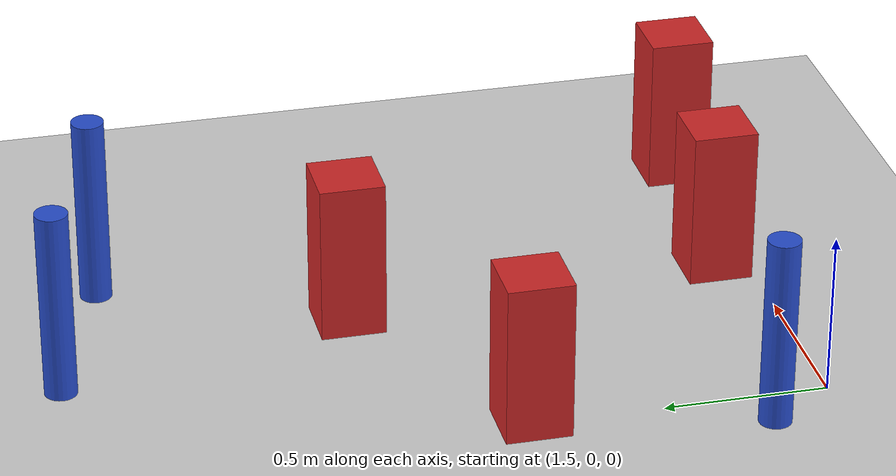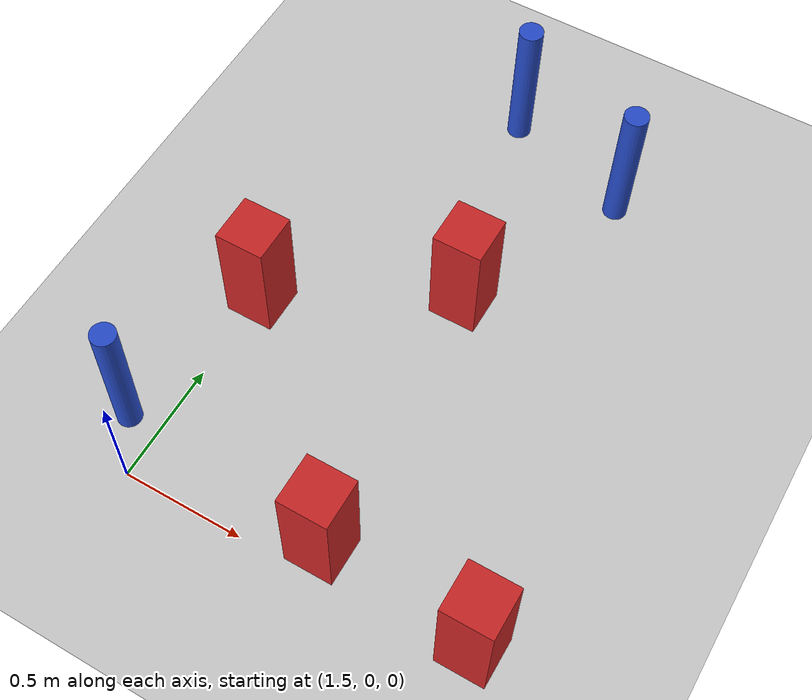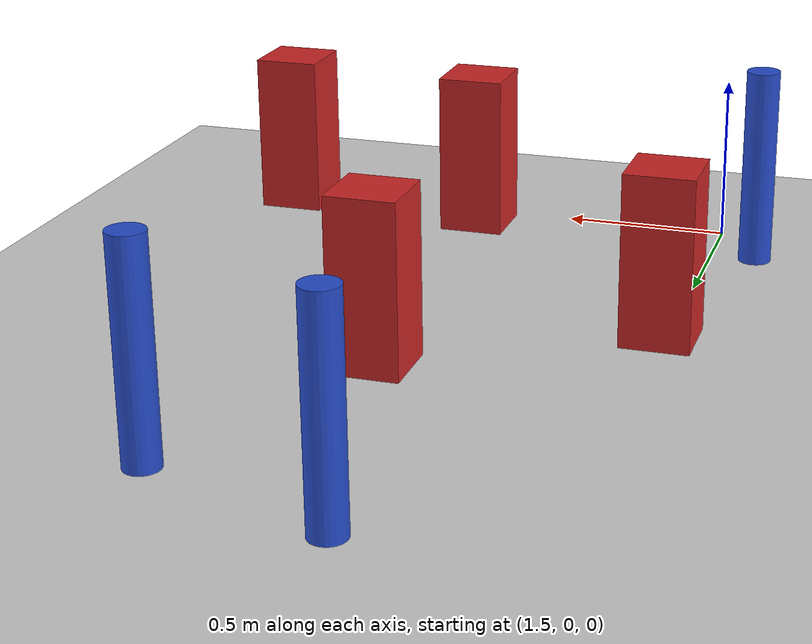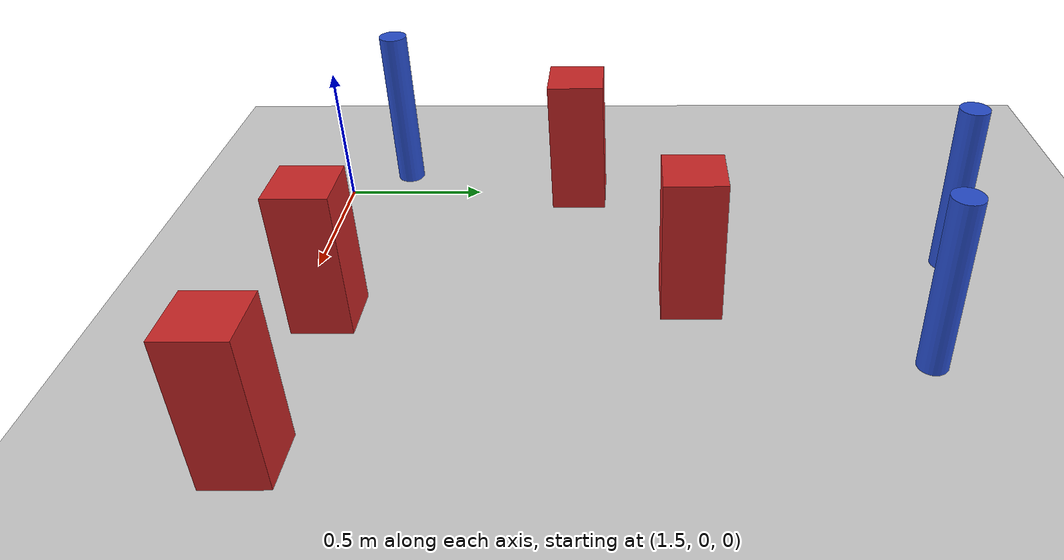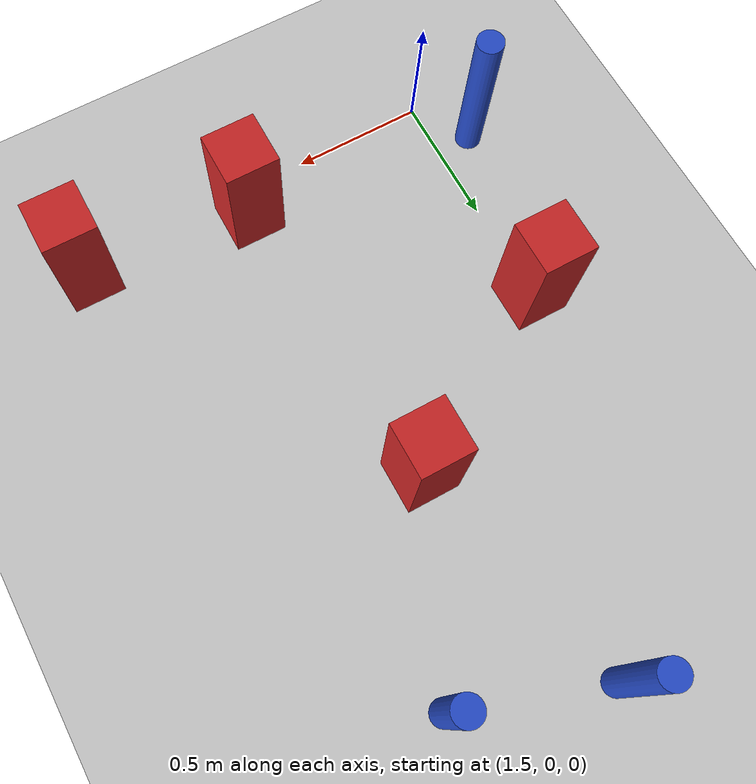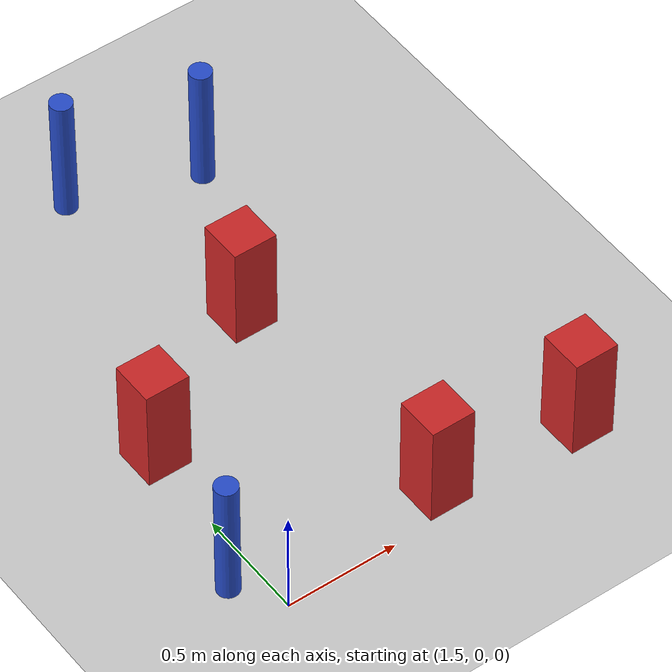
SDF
<sdf version="1.6">
 <world name="default">
  <model name="ground_plane">
   <static>1</static>
   <link name="link">
    <collision name="collision">
     <geometry><plane><normal>0 0 1</normal><size>100 100</size></plane></geometry>
     <surface><friction><ode><mu>100</mu><mu2>50</mu2></ode></friction></surface>
    </collision>
    <visual name="visual">
     <cast_shadows>0</cast_shadows>
     <geometry><plane><normal>0 0 1</normal><size>100 100</size></plane></geometry>
     <material>
      <ambient>1.0 1.0 1.0 1.0</ambient>
      <diffuse>0.8 0.8 0.8 1.0</diffuse>
      <specular>0.01 0.01 0.01 1.000000</specular>
     </material>
    </visual>
   </link>
  </model>
  <model name="pole_obstacle52">
   <static>true</static>
   <pose>2.54015641414 2.01648973834 7.38925637345e-09 -8.47170692799e-08 1.24976765087e-08 -1.74513093015e-07</pose>
   <link name="link">
    <pose>0 0 0.3 0 -0 0</pose>
    <inertial>
     <mass>1</mass>
     <inertia><ixx>0.145833</ixx><ixy>0</ixy><ixz>0</ixz><iyy>0.145833</iyy><iyz>0</iyz><izz>0.125</izz></inertia>
    </inertial>
    <collision name="collision">
     <geometry><cylinder><radius>0.05</radius><length>.6</length></cylinder></geometry>
    </collision>
    <visual name="visual">
     <geometry><cylinder><radius>0.05</radius><length>.6</length></cylinder></geometry>
     <material>
      <script><name>Gazebo/Blue</name><uri>file://media/materials/scripts/gazebo.material</uri></script>
     </material>
    </visual>
   </link>
  </model>
  <model name="pole_obstacle63">
   <static>true</static>
   <pose>1.36518597686 0.2050313278 7.38925637345e-09 -8.47170692799e-08 1.24976765057e-08 -1.74513093016e-07</pose>
   <link name="link">
    <pose>0 0 0.3 0 -0 0</pose>
    <inertial>
     <mass>1</mass>
     <inertia><ixx>0.145833</ixx><ixy>0</ixy><ixz>0</ixz><iyy>0.145833</iyy><iyz>0</iyz><izz>0.125</izz></inertia>
    </inertial>
    <collision name="collision">
     <geometry><cylinder><radius>0.05</radius><length>.6</length></cylinder></geometry>
    </collision>
    <visual name="visual">
     <geometry><cylinder><radius>0.05</radius><length>.6</length></cylinder></geometry>
     <material>
      <script><name>Gazebo/Blue</name><uri>file://media/materials/scripts/gazebo.material</uri></script>
     </material>
    </visual>
   </link>
  </model>
  <model name="square_post_obstacle55">
   <static>true</static>
   <pose>2.92520480954 0.059473413802 1.91545236811e-07 -7.35059704564e-06 1.12565212e-07 2.39332434364e-05</pose>
   <link name="link">
    <pose>0 0 0.25 0 -0 0</pose>
    <inertial>
     <mass>100</mass>
     <inertia>
      <ixx>0.166667</ixx>
      <ixy>0</ixy>
      <ixz>0</ixz>
      <iyy>0.166667</iyy>
      <iyz>0</iyz>
      <izz>0.166667</izz>
     </inertia>
    </inertial>
    <collision name="collision"><geometry><box><size>.2 .2 .5</size></box></geometry></collision>
    <visual name="visual">
     <geometry><box><size>.2 .2 .5</size></box></geometry>
     <material>
      <script><name>Gazebo/Red</name><uri>file://media/materials/scripts/gazebo.material</uri></script>
     </material>
    </visual>
   </link>
  </model>
  <model name="pole_obstacle119">
   <static>true</static>
   <pose>1.99579034423 2.20148113534 7.38925637345e-09 -8.47170692799e-08 1.24976765015e-08 -1.74513093019e-07</pose>
   <link name="link">
    <pose>0 0 0.3 0 -0 0</pose>
    <inertial>
     <mass>1</mass>
     <inertia><ixx>0.145833</ixx><ixy>0</ixy><ixz>0</ixz><iyy>0.145833</iyy><iyz>0</iyz><izz>0.125</izz></inertia>
    </inertial>
    <collision name="collision">
     <geometry><cylinder><radius>0.05</radius><length>.6</length></cylinder></geometry>
    </collision>
    <visual name="visual">
     <geometry><cylinder><radius>0.05</radius><length>.6</length></cylinder></geometry>
     <material>
      <script><name>Gazebo/Blue</name><uri>file://media/materials/scripts/gazebo.material</uri></script>
     </material>
    </visual>
   </link>
  </model>
  <model name="square_post_obstacle126">
   <static>true</static>
   <pose>1.51753951992 0.897637026937 1.91545236811e-07 -7.35059704564e-06 1.12565212e-07 2.39332434364e-05</pose>
   <link name="link">
    <pose>0 0 0.25 0 -0 0</pose>
    <inertial>
     <mass>100</mass>
     <inertia>
      <ixx>0.166667</ixx>
      <ixy>0</ixy>
      <ixz>0</ixz>
      <iyy>0.166667</iyy>
      <iyz>0</iyz>
      <izz>0.166667</izz>
     </inertia>
    </inertial>
    <collision name="collision"><geometry><box><size>.2 .2 .5</size></box></geometry></collision>
    <visual name="visual">
     <geometry><box><size>.2 .2 .5</size></box></geometry>
     <material>
      <script><name>Gazebo/Red</name><uri>file://media/materials/scripts/gazebo.material</uri></script>
     </material>
    </visual>
   </link>
  </model>
  <model name="square_post_obstacle135">
   <static>true</static>
   <pose>2.21392008811 1.29315399457 1.91545236811e-07 -7.35059704564e-06 1.12565212e-07 2.39332434364e-05</pose>
   <link name="link">
    <pose>0 0 0.25 0 -0 0</pose>
    <inertial>
     <mass>100</mass>
     <inertia>
      <ixx>0.166667</ixx>
      <ixy>0</ixy>
      <ixz>0</ixz>
      <iyy>0.166667</iyy>
      <iyz>0</iyz>
      <izz>0.166667</izz>
     </inertia>
    </inertial>
    <collision name="collision"><geometry><box><size>.2 .2 .5</size></box></geometry></collision>
    <visual name="visual">
     <geometry><box><size>.2 .2 .5</size></box></geometry>
     <material>
      <script><name>Gazebo/Red</name><uri>file://media/materials/scripts/gazebo.material</uri></script>
     </material>
    </visual>
   </link>
  </model>
  <model name="square_post_obstacle165">
   <static>true</static>
   <pose>2.28201541743 0.114228856318 1.91545236811e-07 -7.35059704564e-06 1.12565212e-07 2.39332434364e-05</pose>
   <link name="link">
    <pose>0 0 0.25 0 -0 0</pose>
    <inertial>
     <mass>100</mass>
     <inertia>
      <ixx>0.166667</ixx>
      <ixy>0</ixy>
      <ixz>0</ixz>
      <iyy>0.166667</iyy>
      <iyz>0</iyz>
      <izz>0.166667</izz>
     </inertia>
    </inertial>
    <collision name="collision"><geometry><box><size>.2 .2 .5</size></box></geometry></collision>
    <visual name="visual">
     <geometry><box><size>.2 .2 .5</size></box></geometry>
     <material>
      <script><name>Gazebo/Red</name><uri>file://media/materials/scripts/gazebo.material</uri></script>
     </material>
    </visual>
   </link>
  </model>
 </world>
</sdf>
